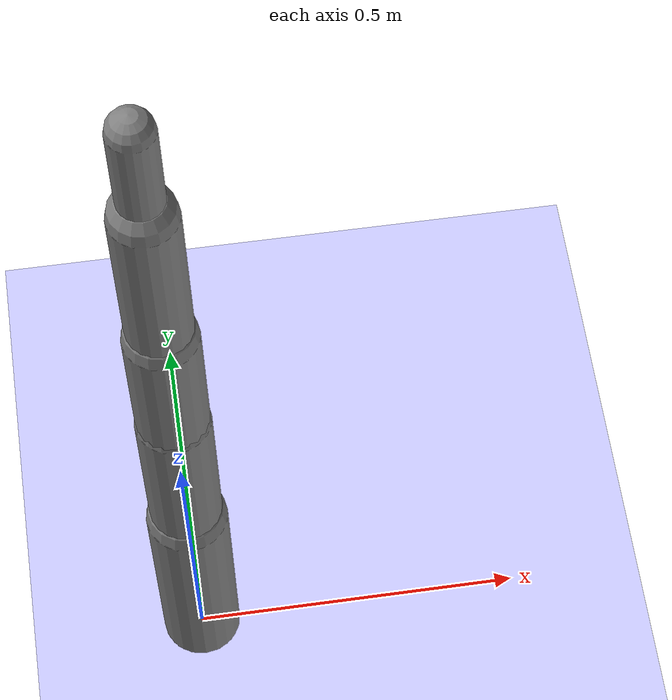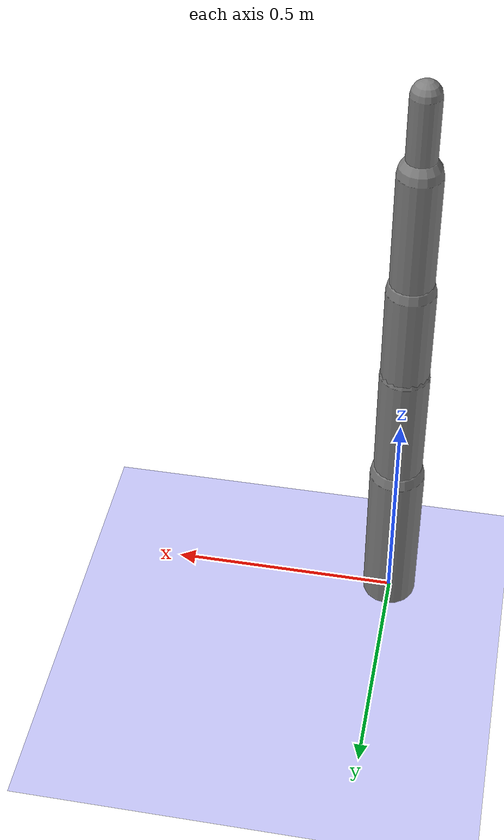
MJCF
<?xml version='1.0' encoding='UTF-8'?>
<mujoco model="robot_model">
  <worldbody>
    <light name="light" pos="0 -3 10" dir="0 0.5 -1" diffuse=".8 .8 .8" specular="0.1 0.1 0.1"/>
    <geom name="floor" type="plane" size="10.0 10.0 0.1" pos="0 0 0" rgba="0.8 0.8 1 1" contype="2" conaffinity="1"/>
    <body name="limb0" pos="0 0 0">
      <geom type="capsule" fromto="0 0 0 0 0 0.36707788899246524" size="0.05976371753945408" density="634.5009008985766" contype="1" conaffinity="2"/>
      <site type="sphere" size="0.01" name="limb0_site0" pos="0 0 0.278096955435155"/>
      <freejoint name="limb0_root"/>
      <body name="limb1" pos="0 0 0.278096955435155">
        <geom type="capsule" fromto="0 0 0 0 0 0.372274530228085" size="0.052960072305996767" density="1069.5549891432568" contype="1" conaffinity="2"/>
        <site type="sphere" size="0.01" name="limb1_site0" pos="0 0 0.3557022303991876"/>
        <site type="sphere" size="0.01" name="limb1_site1" pos="0 0 0.13266544409228273"/>
        <body name="limb2" pos="0 0 0.3557022303991876">
          <geom type="capsule" fromto="0 0 0 0 0 0.5" size="0.04518995252403253" density="1107.4664090692522" contype="1" conaffinity="2"/>
          <site type="sphere" size="0.01" name="limb2_site0" pos="0 0 0.35581407156947237"/>
          <body name="limb3" pos="0 0 0.35581407156947237">
            <geom type="capsule" fromto="0 0 0 0 0 0.30834441111243466" size="0.030518090164800216" density="954.8526929100412" contype="1" conaffinity="2"/>
            <joint name="joint_limb2_limb3_0" type="hinge" axis="1 0 0" range="-47.28859176355999 47.28859176355999" damping="5.0"/>
          </body>
          <joint name="joint_limb1_limb2_0" type="hinge" axis="0 1 0" range="-60.504894728636025 60.504894728636025" damping="5.0"/>
        </body>
        <body name="limb4" pos="0 0 0.13266544409228273">
          <geom type="capsule" fromto="0 0 0 0 0 0.4553959547646001" size="0.05112992904407712" density="905.1932138092933" contype="1" conaffinity="2"/>
          <joint name="joint_limb1_limb4_0" type="hinge" axis="0 0 1" range="-65.9823599983076 65.9823599983076" damping="5.0"/>
        </body>
        <joint name="joint_limb0_limb1_0" type="hinge" axis="0 1 0" range="-89.12714794406047 89.12714794406047" damping="5.0"/>
      </body>
    </body>
  </worldbody>
  <actuator>
    <position name="position_actuator_joint_limb0_limb1_0" joint="joint_limb0_limb1_0" gear="1.8694611590103172" inheritrange="1" forcerange="-20.869594355142794 20.869594355142794" forcelimited="true" kp="100.0"/>
    <position name="position_actuator_joint_limb1_limb2_0" joint="joint_limb1_limb2_0" gear="1.855224638398584" inheritrange="1" forcerange="-19.903003051586865 19.903003051586865" forcelimited="true" kp="100.0"/>
    <position name="position_actuator_joint_limb2_limb3_0" joint="joint_limb2_limb3_0" gear="1.7786907184483476" inheritrange="1" forcerange="-4.875736005442237 4.875736005442237" forcelimited="true" kp="100.0"/>
    <position name="position_actuator_joint_limb1_limb4_0" joint="joint_limb1_limb4_0" gear="0.9865253178883315" inheritrange="1" forcerange="-19.46191769120985 19.46191769120985" forcelimited="true" kp="100.0"/>
  </actuator>
</mujoco>
